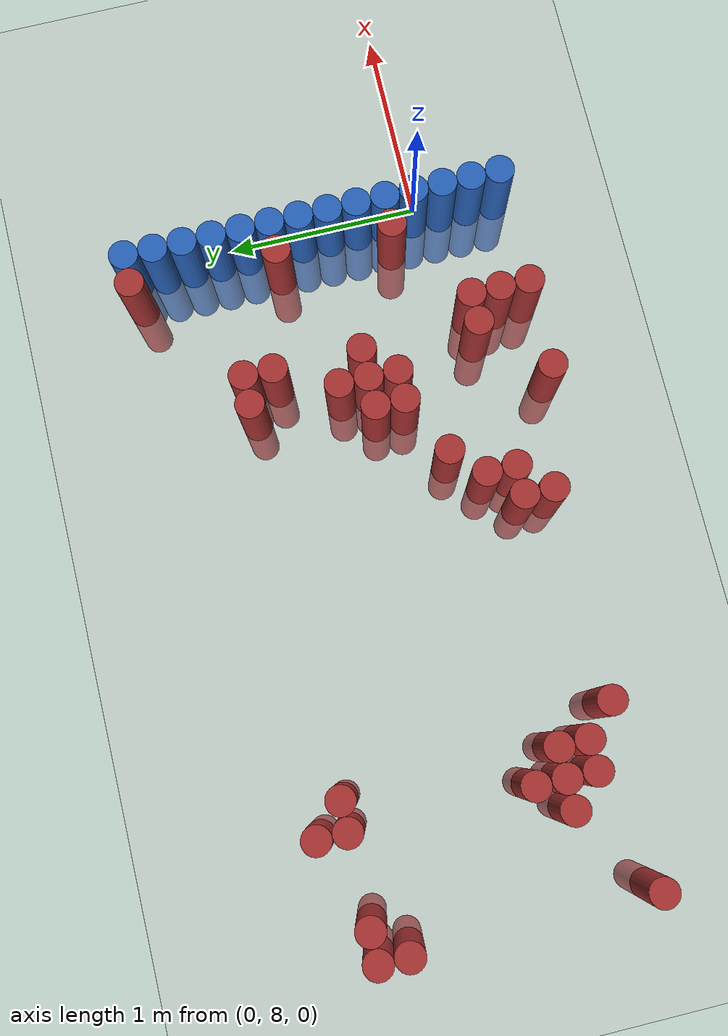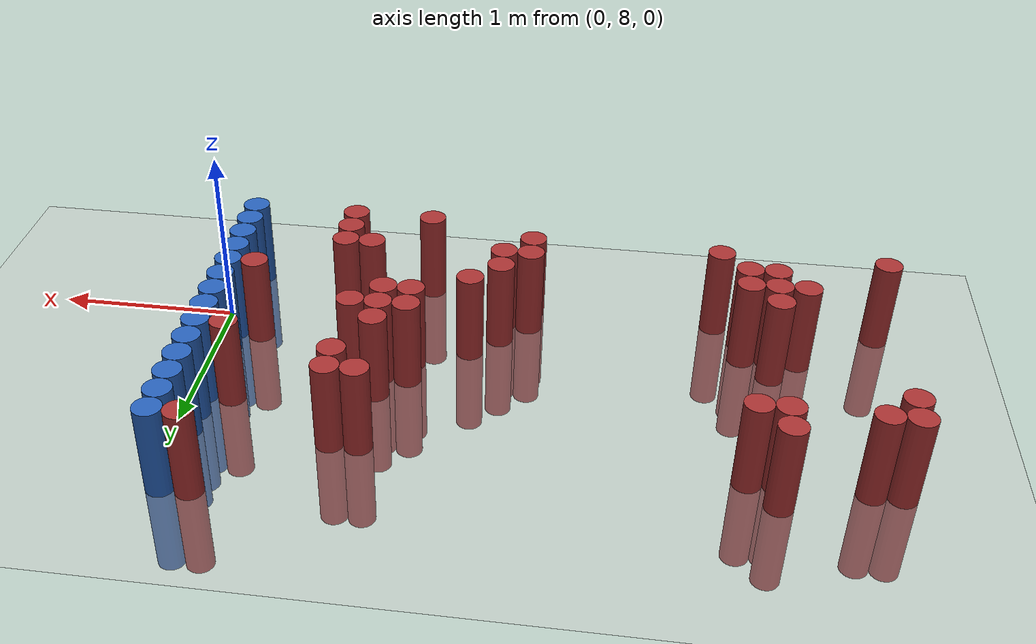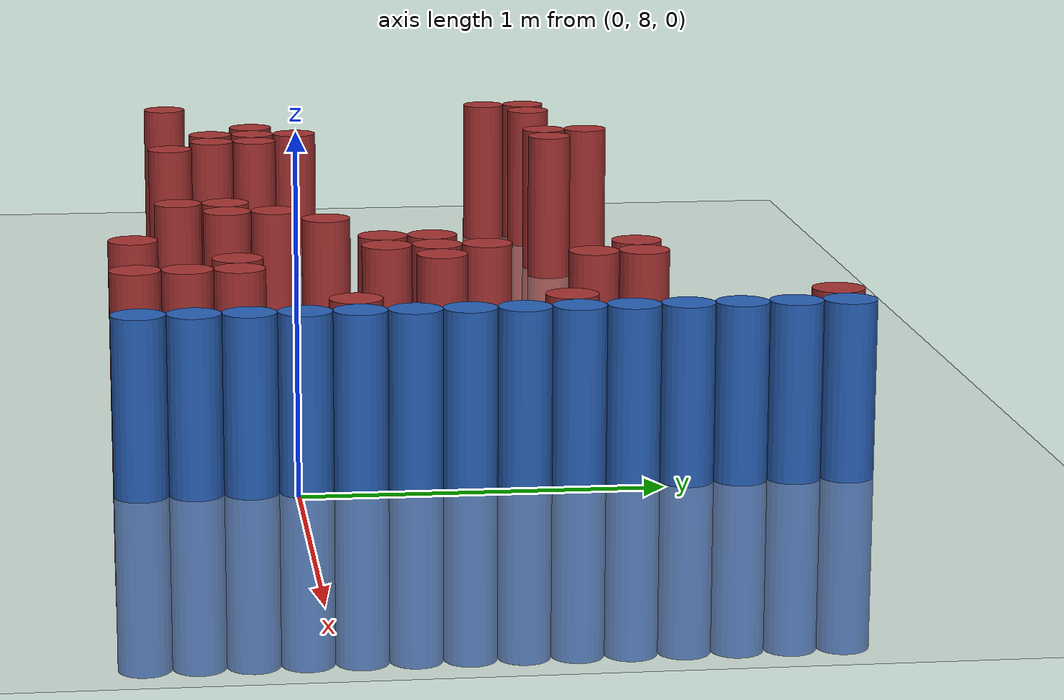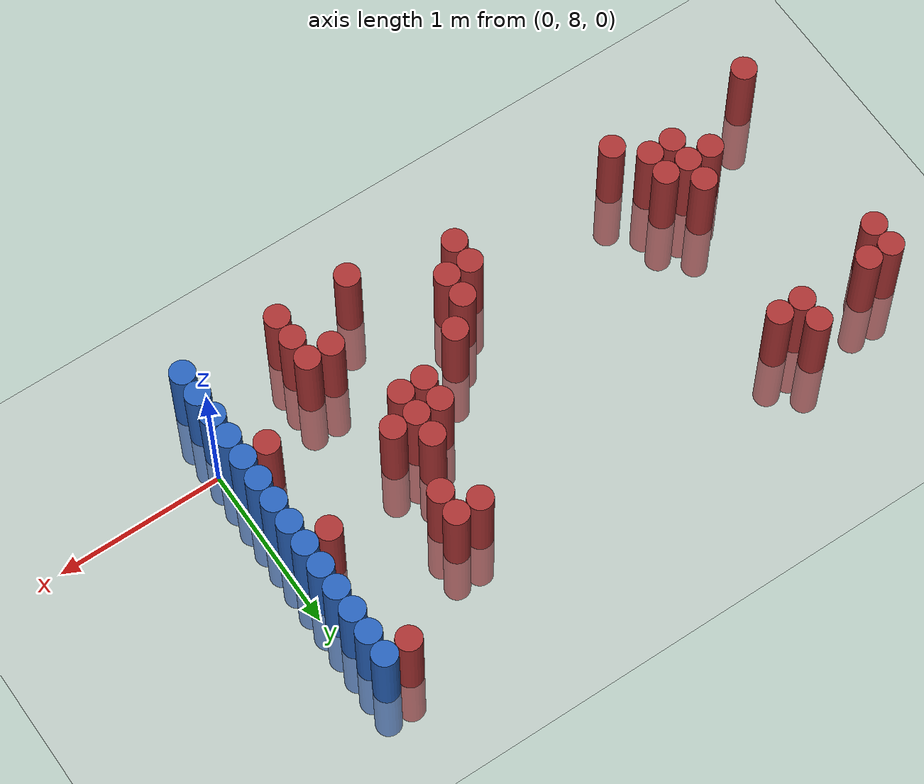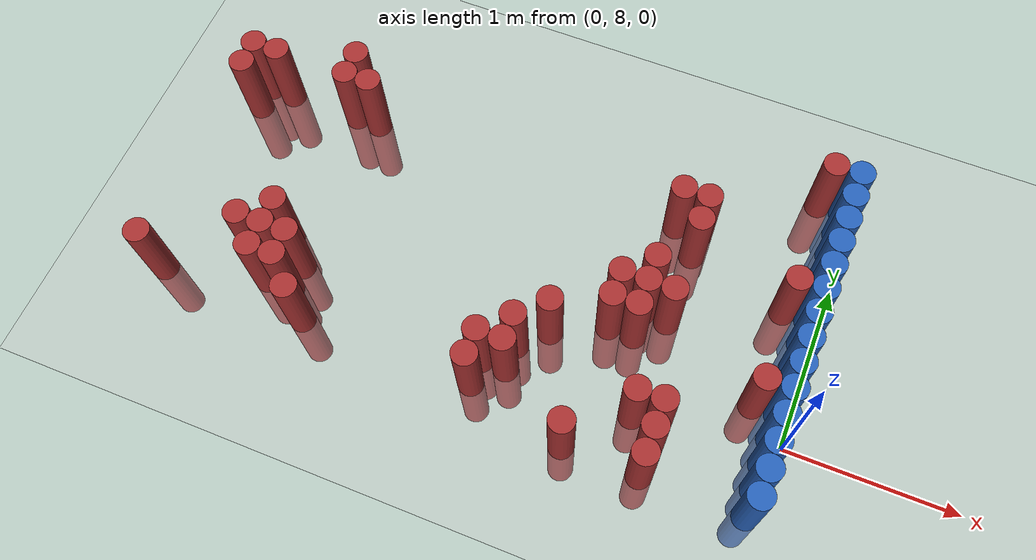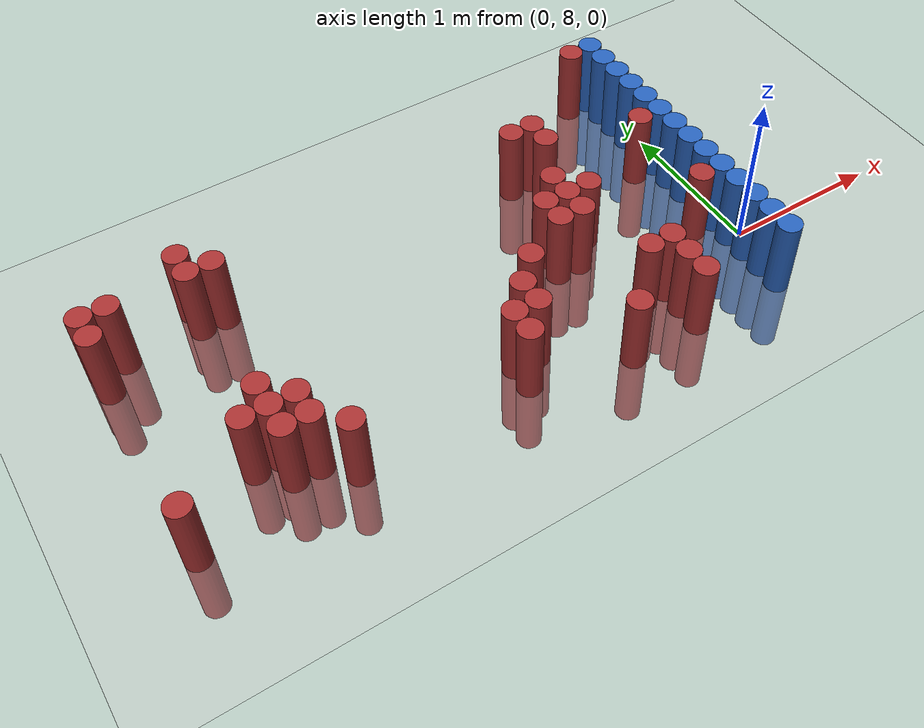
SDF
<sdf version="1.6">
 <world name="default">
  <model name="ground_plane">
   <static>1</static>
   <link name="link">
    <collision name="collision">
     <geometry><plane><normal>0 0 1</normal><size>100 100</size></plane></geometry>
     <surface><friction><ode><mu>100</mu><mu2>50</mu2></ode></friction></surface>
    </collision>
    <visual name="visual">
     <cast_shadows>0</cast_shadows>
     <geometry><plane><normal>0 0 1</normal><size>100 100</size></plane></geometry>
     <material>
      <script><uri>file://media/materials/scripts/gazebo.material</uri><name>Gazebo/Grey</name></script>
     </material>
    </visual>
   </link>
  </model>
  <model name="unit_cylinder_148">
   <static>1</static>
   <pose>-3.675000 7.725000 0.000000 0.000000 0.000000 0.000000</pose>
   <link name="link">
    <inertial>
     <mass>1</mass>
     <inertia><ixx>0.145833</ixx><ixy>0</ixy><ixz>0</ixz><iyy>0.145833</iyy><iyz>0</iyz><izz>0.125</izz></inertia>
    </inertial>
    <collision name="collision">
     <geometry><cylinder><radius>0.075000</radius><length>1</length></cylinder></geometry>
    </collision>
    <visual name="visual">
     <geometry><cylinder><radius>0.075000</radius><length>1</length></cylinder></geometry>
     <material>
      <ambient>0.648000 0.192000 0.192000 1</ambient>
      <diffuse>0.648000 0.192000 0.192000 1</diffuse>
     </material>
     <material>
      <script><name>Gazebo/Grey</name><uri>file://media/materials/scripts/gazebo.material</uri></script>
     </material>
    </visual>
   </link>
  </model>
  <model name="unit_cylinder_149">
   <static>1</static>
   <pose>-3.675000 8.925000 0.000000 0.000000 0.000000 0.000000</pose>
   <link name="link">
    <inertial>
     <mass>1</mass>
     <inertia><ixx>0.145833</ixx><ixy>0</ixy><ixz>0</ixz><iyy>0.145833</iyy><iyz>0</iyz><izz>0.125</izz></inertia>
    </inertial>
    <collision name="collision">
     <geometry><cylinder><radius>0.075000</radius><length>1</length></cylinder></geometry>
    </collision>
    <visual name="visual">
     <geometry><cylinder><radius>0.075000</radius><length>1</length></cylinder></geometry>
     <material>
      <ambient>0.648000 0.192000 0.192000 1</ambient>
      <diffuse>0.648000 0.192000 0.192000 1</diffuse>
     </material>
     <material>
      <script><name>Gazebo/Grey</name><uri>file://media/materials/scripts/gazebo.material</uri></script>
     </material>
    </visual>
   </link>
  </model>
  <model name="unit_cylinder_150">
   <static>1</static>
   <pose>-3.675000 9.075000 0.000000 0.000000 0.000000 0.000000</pose>
   <link name="link">
    <inertial>
     <mass>1</mass>
     <inertia><ixx>0.145833</ixx><ixy>0</ixy><ixz>0</ixz><iyy>0.145833</iyy><iyz>0</iyz><izz>0.125</izz></inertia>
    </inertial>
    <collision name="collision">
     <geometry><cylinder><radius>0.075000</radius><length>1</length></cylinder></geometry>
    </collision>
    <visual name="visual">
     <geometry><cylinder><radius>0.075000</radius><length>1</length></cylinder></geometry>
     <material>
      <ambient>0.648000 0.192000 0.192000 1</ambient>
      <diffuse>0.648000 0.192000 0.192000 1</diffuse>
     </material>
     <material>
      <script><name>Gazebo/Grey</name><uri>file://media/materials/scripts/gazebo.material</uri></script>
     </material>
    </visual>
   </link>
  </model>
  <model name="unit_cylinder_151">
   <static>1</static>
   <pose>-3.525000 9.075000 0.000000 0.000000 0.000000 0.000000</pose>
   <link name="link">
    <inertial>
     <mass>1</mass>
     <inertia><ixx>0.145833</ixx><ixy>0</ixy><ixz>0</ixz><iyy>0.145833</iyy><iyz>0</iyz><izz>0.125</izz></inertia>
    </inertial>
    <collision name="collision">
     <geometry><cylinder><radius>0.075000</radius><length>1</length></cylinder></geometry>
    </collision>
    <visual name="visual">
     <geometry><cylinder><radius>0.075000</radius><length>1</length></cylinder></geometry>
     <material>
      <ambient>0.648000 0.192000 0.192000 1</ambient>
      <diffuse>0.648000 0.192000 0.192000 1</diffuse>
     </material>
     <material>
      <script><name>Gazebo/Grey</name><uri>file://media/materials/scripts/gazebo.material</uri></script>
     </material>
    </visual>
   </link>
  </model>
  <model name="unit_cylinder_152">
   <static>1</static>
   <pose>-3.225000 8.025000 0.000000 0.000000 0.000000 0.000000</pose>
   <link name="link">
    <inertial>
     <mass>1</mass>
     <inertia><ixx>0.145833</ixx><ixy>0</ixy><ixz>0</ixz><iyy>0.145833</iyy><iyz>0</iyz><izz>0.125</izz></inertia>
    </inertial>
    <collision name="collision">
     <geometry><cylinder><radius>0.075000</radius><length>1</length></cylinder></geometry>
    </collision>
    <visual name="visual">
     <geometry><cylinder><radius>0.075000</radius><length>1</length></cylinder></geometry>
     <material>
      <ambient>0.648000 0.192000 0.192000 1</ambient>
      <diffuse>0.648000 0.192000 0.192000 1</diffuse>
     </material>
     <material>
      <script><name>Gazebo/Grey</name><uri>file://media/materials/scripts/gazebo.material</uri></script>
     </material>
    </visual>
   </link>
  </model>
  <model name="unit_cylinder_153">
   <static>1</static>
   <pose>-3.075000 7.875000 0.000000 0.000000 0.000000 0.000000</pose>
   <link name="link">
    <inertial>
     <mass>1</mass>
     <inertia><ixx>0.145833</ixx><ixy>0</ixy><ixz>0</ixz><iyy>0.145833</iyy><iyz>0</iyz><izz>0.125</izz></inertia>
    </inertial>
    <collision name="collision">
     <geometry><cylinder><radius>0.075000</radius><length>1</length></cylinder></geometry>
    </collision>
    <visual name="visual">
     <geometry><cylinder><radius>0.075000</radius><length>1</length></cylinder></geometry>
     <material>
      <ambient>0.648000 0.192000 0.192000 1</ambient>
      <diffuse>0.648000 0.192000 0.192000 1</diffuse>
     </material>
     <material>
      <script><name>Gazebo/Grey</name><uri>file://media/materials/scripts/gazebo.material</uri></script>
     </material>
    </visual>
   </link>
  </model>
  <model name="unit_cylinder_154">
   <static>1</static>
   <pose>-3.075000 8.025000 0.000000 0.000000 0.000000 0.000000</pose>
   <link name="link">
    <inertial>
     <mass>1</mass>
     <inertia><ixx>0.145833</ixx><ixy>0</ixy><ixz>0</ixz><iyy>0.145833</iyy><iyz>0</iyz><izz>0.125</izz></inertia>
    </inertial>
    <collision name="collision">
     <geometry><cylinder><radius>0.075000</radius><length>1</length></cylinder></geometry>
    </collision>
    <visual name="visual">
     <geometry><cylinder><radius>0.075000</radius><length>1</length></cylinder></geometry>
     <material>
      <ambient>0.648000 0.192000 0.192000 1</ambient>
      <diffuse>0.648000 0.192000 0.192000 1</diffuse>
     </material>
     <material>
      <script><name>Gazebo/Grey</name><uri>file://media/materials/scripts/gazebo.material</uri></script>
     </material>
    </visual>
   </link>
  </model>
  <model name="unit_cylinder_155">
   <static>1</static>
   <pose>-3.075000 8.175000 0.000000 0.000000 0.000000 0.000000</pose>
   <link name="link">
    <inertial>
     <mass>1</mass>
     <inertia><ixx>0.145833</ixx><ixy>0</ixy><ixz>0</ixz><iyy>0.145833</iyy><iyz>0</iyz><izz>0.125</izz></inertia>
    </inertial>
    <collision name="collision">
     <geometry><cylinder><radius>0.075000</radius><length>1</length></cylinder></geometry>
    </collision>
    <visual name="visual">
     <geometry><cylinder><radius>0.075000</radius><length>1</length></cylinder></geometry>
     <material>
      <ambient>0.648000 0.192000 0.192000 1</ambient>
      <diffuse>0.648000 0.192000 0.192000 1</diffuse>
     </material>
     <material>
      <script><name>Gazebo/Grey</name><uri>file://media/materials/scripts/gazebo.material</uri></script>
     </material>
    </visual>
   </link>
  </model>
  <model name="unit_cylinder_156">
   <static>1</static>
   <pose>-3.075000 9.075000 0.000000 0.000000 0.000000 0.000000</pose>
   <link name="link">
    <inertial>
     <mass>1</mass>
     <inertia><ixx>0.145833</ixx><ixy>0</ixy><ixz>0</ixz><iyy>0.145833</iyy><iyz>0</iyz><izz>0.125</izz></inertia>
    </inertial>
    <collision name="collision">
     <geometry><cylinder><radius>0.075000</radius><length>1</length></cylinder></geometry>
    </collision>
    <visual name="visual">
     <geometry><cylinder><radius>0.075000</radius><length>1</length></cylinder></geometry>
     <material>
      <ambient>0.648000 0.192000 0.192000 1</ambient>
      <diffuse>0.648000 0.192000 0.192000 1</diffuse>
     </material>
     <material>
      <script><name>Gazebo/Grey</name><uri>file://media/materials/scripts/gazebo.material</uri></script>
     </material>
    </visual>
   </link>
  </model>
  <model name="unit_cylinder_157">
   <static>1</static>
   <pose>-3.075000 9.225000 0.000000 0.000000 0.000000 0.000000</pose>
   <link name="link">
    <inertial>
     <mass>1</mass>
     <inertia><ixx>0.145833</ixx><ixy>0</ixy><ixz>0</ixz><iyy>0.145833</iyy><iyz>0</iyz><izz>0.125</izz></inertia>
    </inertial>
    <collision name="collision">
     <geometry><cylinder><radius>0.075000</radius><length>1</length></cylinder></geometry>
    </collision>
    <visual name="visual">
     <geometry><cylinder><radius>0.075000</radius><length>1</length></cylinder></geometry>
     <material>
      <ambient>0.648000 0.192000 0.192000 1</ambient>
      <diffuse>0.648000 0.192000 0.192000 1</diffuse>
     </material>
     <material>
      <script><name>Gazebo/Grey</name><uri>file://media/materials/scripts/gazebo.material</uri></script>
     </material>
    </visual>
   </link>
  </model>
  <model name="unit_cylinder_159">
   <static>1</static>
   <pose>-2.925000 7.875000 0.000000 0.000000 0.000000 0.000000</pose>
   <link name="link">
    <inertial>
     <mass>1</mass>
     <inertia><ixx>0.145833</ixx><ixy>0</ixy><ixz>0</ixz><iyy>0.145833</iyy><iyz>0</iyz><izz>0.125</izz></inertia>
    </inertial>
    <collision name="collision">
     <geometry><cylinder><radius>0.075000</radius><length>1</length></cylinder></geometry>
    </collision>
    <visual name="visual">
     <geometry><cylinder><radius>0.075000</radius><length>1</length></cylinder></geometry>
     <material>
      <ambient>0.648000 0.192000 0.192000 1</ambient>
      <diffuse>0.648000 0.192000 0.192000 1</diffuse>
     </material>
     <material>
      <script><name>Gazebo/Grey</name><uri>file://media/materials/scripts/gazebo.material</uri></script>
     </material>
    </visual>
   </link>
  </model>
  <model name="unit_cylinder_160">
   <static>1</static>
   <pose>-2.925000 8.025000 0.000000 0.000000 0.000000 0.000000</pose>
   <link name="link">
    <inertial>
     <mass>1</mass>
     <inertia><ixx>0.145833</ixx><ixy>0</ixy><ixz>0</ixz><iyy>0.145833</iyy><iyz>0</iyz><izz>0.125</izz></inertia>
    </inertial>
    <collision name="collision">
     <geometry><cylinder><radius>0.075000</radius><length>1</length></cylinder></geometry>
    </collision>
    <visual name="visual">
     <geometry><cylinder><radius>0.075000</radius><length>1</length></cylinder></geometry>
     <material>
      <ambient>0.648000 0.192000 0.192000 1</ambient>
      <diffuse>0.648000 0.192000 0.192000 1</diffuse>
     </material>
     <material>
      <script><name>Gazebo/Grey</name><uri>file://media/materials/scripts/gazebo.material</uri></script>
     </material>
    </visual>
   </link>
  </model>
  <model name="unit_cylinder_161">
   <static>1</static>
   <pose>-2.925000 9.075000 0.000000 0.000000 0.000000 0.000000</pose>
   <link name="link">
    <inertial>
     <mass>1</mass>
     <inertia><ixx>0.145833</ixx><ixy>0</ixy><ixz>0</ixz><iyy>0.145833</iyy><iyz>0</iyz><izz>0.125</izz></inertia>
    </inertial>
    <collision name="collision">
     <geometry><cylinder><radius>0.075000</radius><length>1</length></cylinder></geometry>
    </collision>
    <visual name="visual">
     <geometry><cylinder><radius>0.075000</radius><length>1</length></cylinder></geometry>
     <material>
      <ambient>0.648000 0.192000 0.192000 1</ambient>
      <diffuse>0.648000 0.192000 0.192000 1</diffuse>
     </material>
     <material>
      <script><name>Gazebo/Grey</name><uri>file://media/materials/scripts/gazebo.material</uri></script>
     </material>
    </visual>
   </link>
  </model>
  <model name="unit_cylinder_167">
   <static>1</static>
   <pose>-2.775000 7.725000 0.000000 0.000000 0.000000 0.000000</pose>
   <link name="link">
    <inertial>
     <mass>1</mass>
     <inertia><ixx>0.145833</ixx><ixy>0</ixy><ixz>0</ixz><iyy>0.145833</iyy><iyz>0</iyz><izz>0.125</izz></inertia>
    </inertial>
    <collision name="collision">
     <geometry><cylinder><radius>0.075000</radius><length>1</length></cylinder></geometry>
    </collision>
    <visual name="visual">
     <geometry><cylinder><radius>0.075000</radius><length>1</length></cylinder></geometry>
     <material>
      <ambient>0.648000 0.192000 0.192000 1</ambient>
      <diffuse>0.648000 0.192000 0.192000 1</diffuse>
     </material>
     <material>
      <script><name>Gazebo/Grey</name><uri>file://media/materials/scripts/gazebo.material</uri></script>
     </material>
    </visual>
   </link>
  </model>
  <model name="unit_cylinder_176">
   <static>1</static>
   <pose>-1.725000 7.725000 0.000000 0.000000 0.000000 0.000000</pose>
   <link name="link">
    <inertial>
     <mass>1</mass>
     <inertia><ixx>0.145833</ixx><ixy>0</ixy><ixz>0</ixz><iyy>0.145833</iyy><iyz>0</iyz><izz>0.125</izz></inertia>
    </inertial>
    <collision name="collision">
     <geometry><cylinder><radius>0.075000</radius><length>1</length></cylinder></geometry>
    </collision>
    <visual name="visual">
     <geometry><cylinder><radius>0.075000</radius><length>1</length></cylinder></geometry>
     <material>
      <ambient>0.648000 0.192000 0.192000 1</ambient>
      <diffuse>0.648000 0.192000 0.192000 1</diffuse>
     </material>
     <material>
      <script><name>Gazebo/Grey</name><uri>file://media/materials/scripts/gazebo.material</uri></script>
     </material>
    </visual>
   </link>
  </model>
  <model name="unit_cylinder_177">
   <static>1</static>
   <pose>-1.725000 7.875000 0.000000 0.000000 0.000000 0.000000</pose>
   <link name="link">
    <inertial>
     <mass>1</mass>
     <inertia><ixx>0.145833</ixx><ixy>0</ixy><ixz>0</ixz><iyy>0.145833</iyy><iyz>0</iyz><izz>0.125</izz></inertia>
    </inertial>
    <collision name="collision">
     <geometry><cylinder><radius>0.075000</radius><length>1</length></cylinder></geometry>
    </collision>
    <visual name="visual">
     <geometry><cylinder><radius>0.075000</radius><length>1</length></cylinder></geometry>
     <material>
      <ambient>0.648000 0.192000 0.192000 1</ambient>
      <diffuse>0.648000 0.192000 0.192000 1</diffuse>
     </material>
     <material>
      <script><name>Gazebo/Grey</name><uri>file://media/materials/scripts/gazebo.material</uri></script>
     </material>
    </visual>
   </link>
  </model>
  <model name="unit_cylinder_183">
   <static>1</static>
   <pose>-1.575000 7.875000 0.000000 0.000000 0.000000 0.000000</pose>
   <link name="link">
    <inertial>
     <mass>1</mass>
     <inertia><ixx>0.145833</ixx><ixy>0</ixy><ixz>0</ixz><iyy>0.145833</iyy><iyz>0</iyz><izz>0.125</izz></inertia>
    </inertial>
    <collision name="collision">
     <geometry><cylinder><radius>0.075000</radius><length>1</length></cylinder></geometry>
    </collision>
    <visual name="visual">
     <geometry><cylinder><radius>0.075000</radius><length>1</length></cylinder></geometry>
     <material>
      <ambient>0.648000 0.192000 0.192000 1</ambient>
      <diffuse>0.648000 0.192000 0.192000 1</diffuse>
     </material>
     <material>
      <script><name>Gazebo/Grey</name><uri>file://media/materials/scripts/gazebo.material</uri></script>
     </material>
    </visual>
   </link>
  </model>
  <model name="unit_cylinder_184">
   <static>1</static>
   <pose>-1.575000 8.025000 0.000000 0.000000 0.000000 0.000000</pose>
   <link name="link">
    <inertial>
     <mass>1</mass>
     <inertia><ixx>0.145833</ixx><ixy>0</ixy><ixz>0</ixz><iyy>0.145833</iyy><iyz>0</iyz><izz>0.125</izz></inertia>
    </inertial>
    <collision name="collision">
     <geometry><cylinder><radius>0.075000</radius><length>1</length></cylinder></geometry>
    </collision>
    <visual name="visual">
     <geometry><cylinder><radius>0.075000</radius><length>1</length></cylinder></geometry>
     <material>
      <ambient>0.648000 0.192000 0.192000 1</ambient>
      <diffuse>0.648000 0.192000 0.192000 1</diffuse>
     </material>
     <material>
      <script><name>Gazebo/Grey</name><uri>file://media/materials/scripts/gazebo.material</uri></script>
     </material>
    </visual>
   </link>
  </model>
  <model name="unit_cylinder_190">
   <static>1</static>
   <pose>-1.425000 8.175000 0.000000 0.000000 0.000000 0.000000</pose>
   <link name="link">
    <inertial>
     <mass>1</mass>
     <inertia><ixx>0.145833</ixx><ixy>0</ixy><ixz>0</ixz><iyy>0.145833</iyy><iyz>0</iyz><izz>0.125</izz></inertia>
    </inertial>
    <collision name="collision">
     <geometry><cylinder><radius>0.075000</radius><length>1</length></cylinder></geometry>
    </collision>
    <visual name="visual">
     <geometry><cylinder><radius>0.075000</radius><length>1</length></cylinder></geometry>
     <material>
      <ambient>0.648000 0.192000 0.192000 1</ambient>
      <diffuse>0.648000 0.192000 0.192000 1</diffuse>
     </material>
     <material>
      <script><name>Gazebo/Grey</name><uri>file://media/materials/scripts/gazebo.material</uri></script>
     </material>
    </visual>
   </link>
  </model>
  <model name="unit_cylinder_192">
   <static>1</static>
   <pose>-1.125000 7.575000 0.000000 0.000000 0.000000 0.000000</pose>
   <link name="link">
    <inertial>
     <mass>1</mass>
     <inertia><ixx>0.145833</ixx><ixy>0</ixy><ixz>0</ixz><iyy>0.145833</iyy><iyz>0</iyz><izz>0.125</izz></inertia>
    </inertial>
    <collision name="collision">
     <geometry><cylinder><radius>0.075000</radius><length>1</length></cylinder></geometry>
    </collision>
    <visual name="visual">
     <geometry><cylinder><radius>0.075000</radius><length>1</length></cylinder></geometry>
     <material>
      <ambient>0.648000 0.192000 0.192000 1</ambient>
      <diffuse>0.648000 0.192000 0.192000 1</diffuse>
     </material>
     <material>
      <script><name>Gazebo/Grey</name><uri>file://media/materials/scripts/gazebo.material</uri></script>
     </material>
    </visual>
   </link>
  </model>
  <model name="unit_cylinder_193">
   <static>1</static>
   <pose>-1.125000 8.325000 0.000000 0.000000 0.000000 0.000000</pose>
   <link name="link">
    <inertial>
     <mass>1</mass>
     <inertia><ixx>0.145833</ixx><ixy>0</ixy><ixz>0</ixz><iyy>0.145833</iyy><iyz>0</iyz><izz>0.125</izz></inertia>
    </inertial>
    <collision name="collision">
     <geometry><cylinder><radius>0.075000</radius><length>1</length></cylinder></geometry>
    </collision>
    <visual name="visual">
     <geometry><cylinder><radius>0.075000</radius><length>1</length></cylinder></geometry>
     <material>
      <ambient>0.648000 0.192000 0.192000 1</ambient>
      <diffuse>0.648000 0.192000 0.192000 1</diffuse>
     </material>
     <material>
      <script><name>Gazebo/Grey</name><uri>file://media/materials/scripts/gazebo.material</uri></script>
     </material>
    </visual>
   </link>
  </model>
  <model name="unit_cylinder_194">
   <static>1</static>
   <pose>-1.125000 8.475000 0.000000 0.000000 0.000000 0.000000</pose>
   <link name="link">
    <inertial>
     <mass>1</mass>
     <inertia><ixx>0.145833</ixx><ixy>0</ixy><ixz>0</ixz><iyy>0.145833</iyy><iyz>0</iyz><izz>0.125</izz></inertia>
    </inertial>
    <collision name="collision">
     <geometry><cylinder><radius>0.075000</radius><length>1</length></cylinder></geometry>
    </collision>
    <visual name="visual">
     <geometry><cylinder><radius>0.075000</radius><length>1</length></cylinder></geometry>
     <material>
      <ambient>0.648000 0.192000 0.192000 1</ambient>
      <diffuse>0.648000 0.192000 0.192000 1</diffuse>
     </material>
     <material>
      <script><name>Gazebo/Grey</name><uri>file://media/materials/scripts/gazebo.material</uri></script>
     </material>
    </visual>
   </link>
  </model>
  <model name="unit_cylinder_197">
   <static>1</static>
   <pose>-0.975000 8.325000 0.000000 0.000000 0.000000 0.000000</pose>
   <link name="link">
    <inertial>
     <mass>1</mass>
     <inertia><ixx>0.145833</ixx><ixy>0</ixy><ixz>0</ixz><iyy>0.145833</iyy><iyz>0</iyz><izz>0.125</izz></inertia>
    </inertial>
    <collision name="collision">
     <geometry><cylinder><radius>0.075000</radius><length>1</length></cylinder></geometry>
    </collision>
    <visual name="visual">
     <geometry><cylinder><radius>0.075000</radius><length>1</length></cylinder></geometry>
     <material>
      <ambient>0.648000 0.192000 0.192000 1</ambient>
      <diffuse>0.648000 0.192000 0.192000 1</diffuse>
     </material>
     <material>
      <script><name>Gazebo/Grey</name><uri>file://media/materials/scripts/gazebo.material</uri></script>
     </material>
    </visual>
   </link>
  </model>
  <model name="unit_cylinder_198">
   <static>1</static>
   <pose>-0.975000 8.475000 0.000000 0.000000 0.000000 0.000000</pose>
   <link name="link">
    <inertial>
     <mass>1</mass>
     <inertia><ixx>0.145833</ixx><ixy>0</ixy><ixz>0</ixz><iyy>0.145833</iyy><iyz>0</iyz><izz>0.125</izz></inertia>
    </inertial>
    <collision name="collision">
     <geometry><cylinder><radius>0.075000</radius><length>1</length></cylinder></geometry>
    </collision>
    <visual name="visual">
     <geometry><cylinder><radius>0.075000</radius><length>1</length></cylinder></geometry>
     <material>
      <ambient>0.648000 0.192000 0.192000 1</ambient>
      <diffuse>0.648000 0.192000 0.192000 1</diffuse>
     </material>
     <material>
      <script><name>Gazebo/Grey</name><uri>file://media/materials/scripts/gazebo.material</uri></script>
     </material>
    </visual>
   </link>
  </model>
  <model name="unit_cylinder_199">
   <static>1</static>
   <pose>-0.975000 8.625000 0.000000 0.000000 0.000000 0.000000</pose>
   <link name="link">
    <inertial>
     <mass>1</mass>
     <inertia><ixx>0.145833</ixx><ixy>0</ixy><ixz>0</ixz><iyy>0.145833</iyy><iyz>0</iyz><izz>0.125</izz></inertia>
    </inertial>
    <collision name="collision">
     <geometry><cylinder><radius>0.075000</radius><length>1</length></cylinder></geometry>
    </collision>
    <visual name="visual">
     <geometry><cylinder><radius>0.075000</radius><length>1</length></cylinder></geometry>
     <material>
      <ambient>0.648000 0.192000 0.192000 1</ambient>
      <diffuse>0.648000 0.192000 0.192000 1</diffuse>
     </material>
     <material>
      <script><name>Gazebo/Grey</name><uri>file://media/materials/scripts/gazebo.material</uri></script>
     </material>
    </visual>
   </link>
  </model>
  <model name="unit_cylinder_200">
   <static>1</static>
   <pose>-0.975000 9.075000 0.000000 0.000000 0.000000 0.000000</pose>
   <link name="link">
    <inertial>
     <mass>1</mass>
     <inertia><ixx>0.145833</ixx><ixy>0</ixy><ixz>0</ixz><iyy>0.145833</iyy><iyz>0</iyz><izz>0.125</izz></inertia>
    </inertial>
    <collision name="collision">
     <geometry><cylinder><radius>0.075000</radius><length>1</length></cylinder></geometry>
    </collision>
    <visual name="visual">
     <geometry><cylinder><radius>0.075000</radius><length>1</length></cylinder></geometry>
     <material>
      <ambient>0.648000 0.192000 0.192000 1</ambient>
      <diffuse>0.648000 0.192000 0.192000 1</diffuse>
     </material>
     <material>
      <script><name>Gazebo/Grey</name><uri>file://media/materials/scripts/gazebo.material</uri></script>
     </material>
    </visual>
   </link>
  </model>
  <model name="unit_cylinder_201">
   <static>1</static>
   <pose>-0.825000 7.875000 0.000000 0.000000 0.000000 0.000000</pose>
   <link name="link">
    <inertial>
     <mass>1</mass>
     <inertia><ixx>0.145833</ixx><ixy>0</ixy><ixz>0</ixz><iyy>0.145833</iyy><iyz>0</iyz><izz>0.125</izz></inertia>
    </inertial>
    <collision name="collision">
     <geometry><cylinder><radius>0.075000</radius><length>1</length></cylinder></geometry>
    </collision>
    <visual name="visual">
     <geometry><cylinder><radius>0.075000</radius><length>1</length></cylinder></geometry>
     <material>
      <ambient>0.648000 0.192000 0.192000 1</ambient>
      <diffuse>0.648000 0.192000 0.192000 1</diffuse>
     </material>
     <material>
      <script><name>Gazebo/Grey</name><uri>file://media/materials/scripts/gazebo.material</uri></script>
     </material>
    </visual>
   </link>
  </model>
  <model name="unit_cylinder_202">
   <static>1</static>
   <pose>-0.825000 8.475000 0.000000 0.000000 0.000000 0.000000</pose>
   <link name="link">
    <inertial>
     <mass>1</mass>
     <inertia><ixx>0.145833</ixx><ixy>0</ixy><ixz>0</ixz><iyy>0.145833</iyy><iyz>0</iyz><izz>0.125</izz></inertia>
    </inertial>
    <collision name="collision">
     <geometry><cylinder><radius>0.075000</radius><length>1</length></cylinder></geometry>
    </collision>
    <visual name="visual">
     <geometry><cylinder><radius>0.075000</radius><length>1</length></cylinder></geometry>
     <material>
      <ambient>0.648000 0.192000 0.192000 1</ambient>
      <diffuse>0.648000 0.192000 0.192000 1</diffuse>
     </material>
     <material>
      <script><name>Gazebo/Grey</name><uri>file://media/materials/scripts/gazebo.material</uri></script>
     </material>
    </visual>
   </link>
  </model>
  <model name="unit_cylinder_203">
   <static>1</static>
   <pose>-0.825000 8.925000 0.000000 0.000000 0.000000 0.000000</pose>
   <link name="link">
    <inertial>
     <mass>1</mass>
     <inertia><ixx>0.145833</ixx><ixy>0</ixy><ixz>0</ixz><iyy>0.145833</iyy><iyz>0</iyz><izz>0.125</izz></inertia>
    </inertial>
    <collision name="collision">
     <geometry><cylinder><radius>0.075000</radius><length>1</length></cylinder></geometry>
    </collision>
    <visual name="visual">
     <geometry><cylinder><radius>0.075000</radius><length>1</length></cylinder></geometry>
     <material>
      <ambient>0.648000 0.192000 0.192000 1</ambient>
      <diffuse>0.648000 0.192000 0.192000 1</diffuse>
     </material>
     <material>
      <script><name>Gazebo/Grey</name><uri>file://media/materials/scripts/gazebo.material</uri></script>
     </material>
    </visual>
   </link>
  </model>
  <model name="unit_cylinder_204">
   <static>1</static>
   <pose>-0.825000 9.075000 0.000000 0.000000 0.000000 0.000000</pose>
   <link name="link">
    <inertial>
     <mass>1</mass>
     <inertia><ixx>0.145833</ixx><ixy>0</ixy><ixz>0</ixz><iyy>0.145833</iyy><iyz>0</iyz><izz>0.125</izz></inertia>
    </inertial>
    <collision name="collision">
     <geometry><cylinder><radius>0.075000</radius><length>1</length></cylinder></geometry>
    </collision>
    <visual name="visual">
     <geometry><cylinder><radius>0.075000</radius><length>1</length></cylinder></geometry>
     <material>
      <ambient>0.648000 0.192000 0.192000 1</ambient>
      <diffuse>0.648000 0.192000 0.192000 1</diffuse>
     </material>
     <material>
      <script><name>Gazebo/Grey</name><uri>file://media/materials/scripts/gazebo.material</uri></script>
     </material>
    </visual>
   </link>
  </model>
  <model name="unit_cylinder_205">
   <static>1</static>
   <pose>-0.675000 7.575000 0.000000 0.000000 0.000000 0.000000</pose>
   <link name="link">
    <inertial>
     <mass>1</mass>
     <inertia><ixx>0.145833</ixx><ixy>0</ixy><ixz>0</ixz><iyy>0.145833</iyy><iyz>0</iyz><izz>0.125</izz></inertia>
    </inertial>
    <collision name="collision">
     <geometry><cylinder><radius>0.075000</radius><length>1</length></cylinder></geometry>
    </collision>
    <visual name="visual">
     <geometry><cylinder><radius>0.075000</radius><length>1</length></cylinder></geometry>
     <material>
      <ambient>0.648000 0.192000 0.192000 1</ambient>
      <diffuse>0.648000 0.192000 0.192000 1</diffuse>
     </material>
     <material>
      <script><name>Gazebo/Grey</name><uri>file://media/materials/scripts/gazebo.material</uri></script>
     </material>
    </visual>
   </link>
  </model>
  <model name="unit_cylinder_206">
   <static>1</static>
   <pose>-0.675000 7.725000 0.000000 0.000000 0.000000 0.000000</pose>
   <link name="link">
    <inertial>
     <mass>1</mass>
     <inertia><ixx>0.145833</ixx><ixy>0</ixy><ixz>0</ixz><iyy>0.145833</iyy><iyz>0</iyz><izz>0.125</izz></inertia>
    </inertial>
    <collision name="collision">
     <geometry><cylinder><radius>0.075000</radius><length>1</length></cylinder></geometry>
    </collision>
    <visual name="visual">
     <geometry><cylinder><radius>0.075000</radius><length>1</length></cylinder></geometry>
     <material>
      <ambient>0.648000 0.192000 0.192000 1</ambient>
      <diffuse>0.648000 0.192000 0.192000 1</diffuse>
     </material>
     <material>
      <script><name>Gazebo/Grey</name><uri>file://media/materials/scripts/gazebo.material</uri></script>
     </material>
    </visual>
   </link>
  </model>
  <model name="unit_cylinder_207">
   <static>1</static>
   <pose>-0.675000 7.875000 0.000000 0.000000 0.000000 0.000000</pose>
   <link name="link">
    <inertial>
     <mass>1</mass>
     <inertia><ixx>0.145833</ixx><ixy>0</ixy><ixz>0</ixz><iyy>0.145833</iyy><iyz>0</iyz><izz>0.125</izz></inertia>
    </inertial>
    <collision name="collision">
     <geometry><cylinder><radius>0.075000</radius><length>1</length></cylinder></geometry>
    </collision>
    <visual name="visual">
     <geometry><cylinder><radius>0.075000</radius><length>1</length></cylinder></geometry>
     <material>
      <ambient>0.648000 0.192000 0.192000 1</ambient>
      <diffuse>0.648000 0.192000 0.192000 1</diffuse>
     </material>
     <material>
      <script><name>Gazebo/Grey</name><uri>file://media/materials/scripts/gazebo.material</uri></script>
     </material>
    </visual>
   </link>
  </model>
  <model name="unit_cylinder_214">
   <static>1</static>
   <pose>-0.225000 8.175000 0.000000 0.000000 0.000000 0.000000</pose>
   <link name="link">
    <inertial>
     <mass>1</mass>
     <inertia><ixx>0.145833</ixx><ixy>0</ixy><ixz>0</ixz><iyy>0.145833</iyy><iyz>0</iyz><izz>0.125</izz></inertia>
    </inertial>
    <collision name="collision">
     <geometry><cylinder><radius>0.075000</radius><length>1</length></cylinder></geometry>
    </collision>
    <visual name="visual">
     <geometry><cylinder><radius>0.075000</radius><length>1</length></cylinder></geometry>
     <material>
      <ambient>0.648000 0.192000 0.192000 1</ambient>
      <diffuse>0.648000 0.192000 0.192000 1</diffuse>
     </material>
     <material>
      <script><name>Gazebo/Grey</name><uri>file://media/materials/scripts/gazebo.material</uri></script>
     </material>
    </visual>
   </link>
  </model>
  <model name="unit_cylinder_215">
   <static>1</static>
   <pose>-0.225000 8.775000 0.000000 0.000000 0.000000 0.000000</pose>
   <link name="link">
    <inertial>
     <mass>1</mass>
     <inertia><ixx>0.145833</ixx><ixy>0</ixy><ixz>0</ixz><iyy>0.145833</iyy><iyz>0</iyz><izz>0.125</izz></inertia>
    </inertial>
    <collision name="collision">
     <geometry><cylinder><radius>0.075000</radius><length>1</length></cylinder></geometry>
    </collision>
    <visual name="visual">
     <geometry><cylinder><radius>0.075000</radius><length>1</length></cylinder></geometry>
     <material>
      <ambient>0.648000 0.192000 0.192000 1</ambient>
      <diffuse>0.648000 0.192000 0.192000 1</diffuse>
     </material>
     <material>
      <script><name>Gazebo/Grey</name><uri>file://media/materials/scripts/gazebo.material</uri></script>
     </material>
    </visual>
   </link>
  </model>
  <model name="unit_cylinder_216">
   <static>1</static>
   <pose>-0.225000 9.525000 0.000000 0.000000 0.000000 0.000000</pose>
   <link name="link">
    <inertial>
     <mass>1</mass>
     <inertia><ixx>0.145833</ixx><ixy>0</ixy><ixz>0</ixz><iyy>0.145833</iyy><iyz>0</iyz><izz>0.125</izz></inertia>
    </inertial>
    <collision name="collision">
     <geometry><cylinder><radius>0.075000</radius><length>1</length></cylinder></geometry>
    </collision>
    <visual name="visual">
     <geometry><cylinder><radius>0.075000</radius><length>1</length></cylinder></geometry>
     <material>
      <ambient>0.648000 0.192000 0.192000 1</ambient>
      <diffuse>0.648000 0.192000 0.192000 1</diffuse>
     </material>
     <material>
      <script><name>Gazebo/Grey</name><uri>file://media/materials/scripts/gazebo.material</uri></script>
     </material>
    </visual>
   </link>
  </model>
  <model name="unit_cylinder_233">
   <static>1</static>
   <pose>-0.075000 7.575000 0.000000 0.000000 0.000000 0.000000</pose>
   <link name="link">
    <inertial>
     <mass>1</mass>
     <inertia><ixx>0.145833</ixx><ixy>0</ixy><ixz>0</ixz><iyy>0.145833</iyy><iyz>0</iyz><izz>0.125</izz></inertia>
    </inertial>
    <collision name="collision">
     <geometry><cylinder><radius>0.075000</radius><length>1</length></cylinder></geometry>
    </collision>
    <visual name="visual">
     <geometry><cylinder><radius>0.075000</radius><length>1</length></cylinder></geometry>
     <material>
      <ambient>0.152000 0.379000 0.720000 1</ambient>
      <diffuse>0.152000 0.379000 0.720000 1</diffuse>
     </material>
     <material>
      <script><name>Gazebo/Grey</name><uri>file://media/materials/scripts/gazebo.material</uri></script>
     </material>
    </visual>
   </link>
  </model>
  <model name="unit_cylinder_234">
   <static>1</static>
   <pose>-0.075000 7.725000 0.000000 0.000000 0.000000 0.000000</pose>
   <link name="link">
    <inertial>
     <mass>1</mass>
     <inertia><ixx>0.145833</ixx><ixy>0</ixy><ixz>0</ixz><iyy>0.145833</iyy><iyz>0</iyz><izz>0.125</izz></inertia>
    </inertial>
    <collision name="collision">
     <geometry><cylinder><radius>0.075000</radius><length>1</length></cylinder></geometry>
    </collision>
    <visual name="visual">
     <geometry><cylinder><radius>0.075000</radius><length>1</length></cylinder></geometry>
     <material>
      <ambient>0.152000 0.379000 0.720000 1</ambient>
      <diffuse>0.152000 0.379000 0.720000 1</diffuse>
     </material>
     <material>
      <script><name>Gazebo/Grey</name><uri>file://media/materials/scripts/gazebo.material</uri></script>
     </material>
    </visual>
   </link>
  </model>
  <model name="unit_cylinder_235">
   <static>1</static>
   <pose>-0.075000 7.875000 0.000000 0.000000 0.000000 0.000000</pose>
   <link name="link">
    <inertial>
     <mass>1</mass>
     <inertia><ixx>0.145833</ixx><ixy>0</ixy><ixz>0</ixz><iyy>0.145833</iyy><iyz>0</iyz><izz>0.125</izz></inertia>
    </inertial>
    <collision name="collision">
     <geometry><cylinder><radius>0.075000</radius><length>1</length></cylinder></geometry>
    </collision>
    <visual name="visual">
     <geometry><cylinder><radius>0.075000</radius><length>1</length></cylinder></geometry>
     <material>
      <ambient>0.152000 0.379000 0.720000 1</ambient>
      <diffuse>0.152000 0.379000 0.720000 1</diffuse>
     </material>
     <material>
      <script><name>Gazebo/Grey</name><uri>file://media/materials/scripts/gazebo.material</uri></script>
     </material>
    </visual>
   </link>
  </model>
  <model name="unit_cylinder_236">
   <static>1</static>
   <pose>-0.075000 8.025000 0.000000 0.000000 0.000000 0.000000</pose>
   <link name="link">
    <inertial>
     <mass>1</mass>
     <inertia><ixx>0.145833</ixx><ixy>0</ixy><ixz>0</ixz><iyy>0.145833</iyy><iyz>0</iyz><izz>0.125</izz></inertia>
    </inertial>
    <collision name="collision">
     <geometry><cylinder><radius>0.075000</radius><length>1</length></cylinder></geometry>
    </collision>
    <visual name="visual">
     <geometry><cylinder><radius>0.075000</radius><length>1</length></cylinder></geometry>
     <material>
      <ambient>0.152000 0.379000 0.720000 1</ambient>
      <diffuse>0.152000 0.379000 0.720000 1</diffuse>
     </material>
     <material>
      <script><name>Gazebo/Grey</name><uri>file://media/materials/scripts/gazebo.material</uri></script>
     </material>
    </visual>
   </link>
  </model>
  <model name="unit_cylinder_237">
   <static>1</static>
   <pose>-0.075000 8.175000 0.000000 0.000000 0.000000 0.000000</pose>
   <link name="link">
    <inertial>
     <mass>1</mass>
     <inertia><ixx>0.145833</ixx><ixy>0</ixy><ixz>0</ixz><iyy>0.145833</iyy><iyz>0</iyz><izz>0.125</izz></inertia>
    </inertial>
    <collision name="collision">
     <geometry><cylinder><radius>0.075000</radius><length>1</length></cylinder></geometry>
    </collision>
    <visual name="visual">
     <geometry><cylinder><radius>0.075000</radius><length>1</length></cylinder></geometry>
     <material>
      <ambient>0.152000 0.379000 0.720000 1</ambient>
      <diffuse>0.152000 0.379000 0.720000 1</diffuse>
     </material>
     <material>
      <script><name>Gazebo/Grey</name><uri>file://media/materials/scripts/gazebo.material</uri></script>
     </material>
    </visual>
   </link>
  </model>
  <model name="unit_cylinder_238">
   <static>1</static>
   <pose>-0.075000 8.325000 0.000000 0.000000 0.000000 0.000000</pose>
   <link name="link">
    <inertial>
     <mass>1</mass>
     <inertia><ixx>0.145833</ixx><ixy>0</ixy><ixz>0</ixz><iyy>0.145833</iyy><iyz>0</iyz><izz>0.125</izz></inertia>
    </inertial>
    <collision name="collision">
     <geometry><cylinder><radius>0.075000</radius><length>1</length></cylinder></geometry>
    </collision>
    <visual name="visual">
     <geometry><cylinder><radius>0.075000</radius><length>1</length></cylinder></geometry>
     <material>
      <ambient>0.152000 0.379000 0.720000 1</ambient>
      <diffuse>0.152000 0.379000 0.720000 1</diffuse>
     </material>
     <material>
      <script><name>Gazebo/Grey</name><uri>file://media/materials/scripts/gazebo.material</uri></script>
     </material>
    </visual>
   </link>
  </model>
  <model name="unit_cylinder_239">
   <static>1</static>
   <pose>-0.075000 8.475000 0.000000 0.000000 0.000000 0.000000</pose>
   <link name="link">
    <inertial>
     <mass>1</mass>
     <inertia><ixx>0.145833</ixx><ixy>0</ixy><ixz>0</ixz><iyy>0.145833</iyy><iyz>0</iyz><izz>0.125</izz></inertia>
    </inertial>
    <collision name="collision">
     <geometry><cylinder><radius>0.075000</radius><length>1</length></cylinder></geometry>
    </collision>
    <visual name="visual">
     <geometry><cylinder><radius>0.075000</radius><length>1</length></cylinder></geometry>
     <material>
      <ambient>0.152000 0.379000 0.720000 1</ambient>
      <diffuse>0.152000 0.379000 0.720000 1</diffuse>
     </material>
     <material>
      <script><name>Gazebo/Grey</name><uri>file://media/materials/scripts/gazebo.material</uri></script>
     </material>
    </visual>
   </link>
  </model>
  <model name="unit_cylinder_240">
   <static>1</static>
   <pose>-0.075000 8.625000 0.000000 0.000000 0.000000 0.000000</pose>
   <link name="link">
    <inertial>
     <mass>1</mass>
     <inertia><ixx>0.145833</ixx><ixy>0</ixy><ixz>0</ixz><iyy>0.145833</iyy><iyz>0</iyz><izz>0.125</izz></inertia>
    </inertial>
    <collision name="collision">
     <geometry><cylinder><radius>0.075000</radius><length>1</length></cylinder></geometry>
    </collision>
    <visual name="visual">
     <geometry><cylinder><radius>0.075000</radius><length>1</length></cylinder></geometry>
     <material>
      <ambient>0.152000 0.379000 0.720000 1</ambient>
      <diffuse>0.152000 0.379000 0.720000 1</diffuse>
     </material>
     <material>
      <script><name>Gazebo/Grey</name><uri>file://media/materials/scripts/gazebo.material</uri></script>
     </material>
    </visual>
   </link>
  </model>
  <model name="unit_cylinder_241">
   <static>1</static>
   <pose>-0.075000 8.775000 0.000000 0.000000 0.000000 0.000000</pose>
   <link name="link">
    <inertial>
     <mass>1</mass>
     <inertia><ixx>0.145833</ixx><ixy>0</ixy><ixz>0</ixz><iyy>0.145833</iyy><iyz>0</iyz><izz>0.125</izz></inertia>
    </inertial>
    <collision name="collision">
     <geometry><cylinder><radius>0.075000</radius><length>1</length></cylinder></geometry>
    </collision>
    <visual name="visual">
     <geometry><cylinder><radius>0.075000</radius><length>1</length></cylinder></geometry>
     <material>
      <ambient>0.152000 0.379000 0.720000 1</ambient>
      <diffuse>0.152000 0.379000 0.720000 1</diffuse>
     </material>
     <material>
      <script><name>Gazebo/Grey</name><uri>file://media/materials/scripts/gazebo.material</uri></script>
     </material>
    </visual>
   </link>
  </model>
  <model name="unit_cylinder_242">
   <static>1</static>
   <pose>-0.075000 8.925000 0.000000 0.000000 0.000000 0.000000</pose>
   <link name="link">
    <inertial>
     <mass>1</mass>
     <inertia><ixx>0.145833</ixx><ixy>0</ixy><ixz>0</ixz><iyy>0.145833</iyy><iyz>0</iyz><izz>0.125</izz></inertia>
    </inertial>
    <collision name="collision">
     <geometry><cylinder><radius>0.075000</radius><length>1</length></cylinder></geometry>
    </collision>
    <visual name="visual">
     <geometry><cylinder><radius>0.075000</radius><length>1</length></cylinder></geometry>
     <material>
      <ambient>0.152000 0.379000 0.720000 1</ambient>
      <diffuse>0.152000 0.379000 0.720000 1</diffuse>
     </material>
     <material>
      <script><name>Gazebo/Grey</name><uri>file://media/materials/scripts/gazebo.material</uri></script>
     </material>
    </visual>
   </link>
  </model>
  <model name="unit_cylinder_243">
   <static>1</static>
   <pose>-0.075000 9.075000 0.000000 0.000000 0.000000 0.000000</pose>
   <link name="link">
    <inertial>
     <mass>1</mass>
     <inertia><ixx>0.145833</ixx><ixy>0</ixy><ixz>0</ixz><iyy>0.145833</iyy><iyz>0</iyz><izz>0.125</izz></inertia>
    </inertial>
    <collision name="collision">
     <geometry><cylinder><radius>0.075000</radius><length>1</length></cylinder></geometry>
    </collision>
    <visual name="visual">
     <geometry><cylinder><radius>0.075000</radius><length>1</length></cylinder></geometry>
     <material>
      <ambient>0.152000 0.379000 0.720000 1</ambient>
      <diffuse>0.152000 0.379000 0.720000 1</diffuse>
     </material>
     <material>
      <script><name>Gazebo/Grey</name><uri>file://media/materials/scripts/gazebo.material</uri></script>
     </material>
    </visual>
   </link>
  </model>
  <model name="unit_cylinder_244">
   <static>1</static>
   <pose>-0.075000 9.225000 0.000000 0.000000 0.000000 0.000000</pose>
   <link name="link">
    <inertial>
     <mass>1</mass>
     <inertia><ixx>0.145833</ixx><ixy>0</ixy><ixz>0</ixz><iyy>0.145833</iyy><iyz>0</iyz><izz>0.125</izz></inertia>
    </inertial>
    <collision name="collision">
     <geometry><cylinder><radius>0.075000</radius><length>1</length></cylinder></geometry>
    </collision>
    <visual name="visual">
     <geometry><cylinder><radius>0.075000</radius><length>1</length></cylinder></geometry>
     <material>
      <ambient>0.152000 0.379000 0.720000 1</ambient>
      <diffuse>0.152000 0.379000 0.720000 1</diffuse>
     </material>
     <material>
      <script><name>Gazebo/Grey</name><uri>file://media/materials/scripts/gazebo.material</uri></script>
     </material>
    </visual>
   </link>
  </model>
  <model name="unit_cylinder_245">
   <static>1</static>
   <pose>-0.075000 9.375000 0.000000 0.000000 0.000000 0.000000</pose>
   <link name="link">
    <inertial>
     <mass>1</mass>
     <inertia><ixx>0.145833</ixx><ixy>0</ixy><ixz>0</ixz><iyy>0.145833</iyy><iyz>0</iyz><izz>0.125</izz></inertia>
    </inertial>
    <collision name="collision">
     <geometry><cylinder><radius>0.075000</radius><length>1</length></cylinder></geometry>
    </collision>
    <visual name="visual">
     <geometry><cylinder><radius>0.075000</radius><length>1</length></cylinder></geometry>
     <material>
      <ambient>0.152000 0.379000 0.720000 1</ambient>
      <diffuse>0.152000 0.379000 0.720000 1</diffuse>
     </material>
     <material>
      <script><name>Gazebo/Grey</name><uri>file://media/materials/scripts/gazebo.material</uri></script>
     </material>
    </visual>
   </link>
  </model>
  <model name="unit_cylinder_246">
   <static>1</static>
   <pose>-0.075000 9.525000 0.000000 0.000000 0.000000 0.000000</pose>
   <link name="link">
    <inertial>
     <mass>1</mass>
     <inertia><ixx>0.145833</ixx><ixy>0</ixy><ixz>0</ixz><iyy>0.145833</iyy><iyz>0</iyz><izz>0.125</izz></inertia>
    </inertial>
    <collision name="collision">
     <geometry><cylinder><radius>0.075000</radius><length>1</length></cylinder></geometry>
    </collision>
    <visual name="visual">
     <geometry><cylinder><radius>0.075000</radius><length>1</length></cylinder></geometry>
     <material>
      <ambient>0.152000 0.379000 0.720000 1</ambient>
      <diffuse>0.152000 0.379000 0.720000 1</diffuse>
     </material>
     <material>
      <script><name>Gazebo/Grey</name><uri>file://media/materials/scripts/gazebo.material</uri></script>
     </material>
    </visual>
   </link>
  </model>
 </world>
</sdf>
